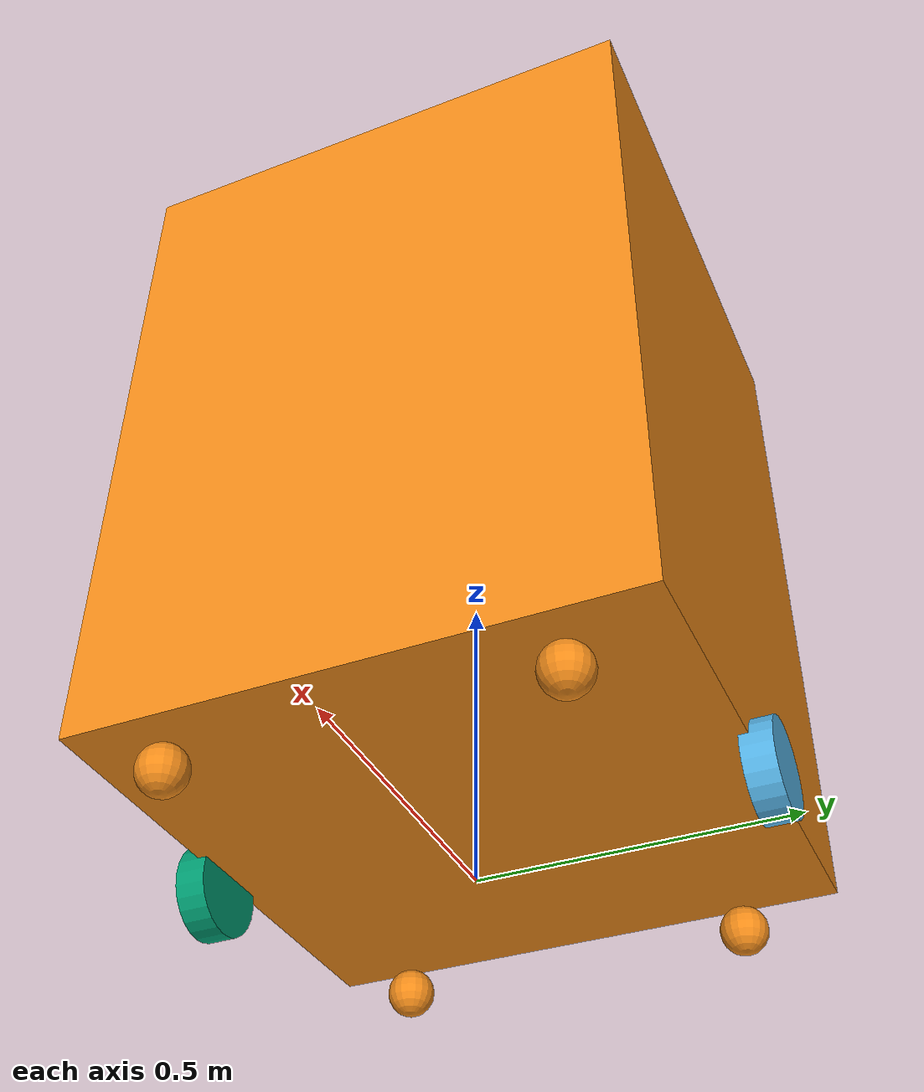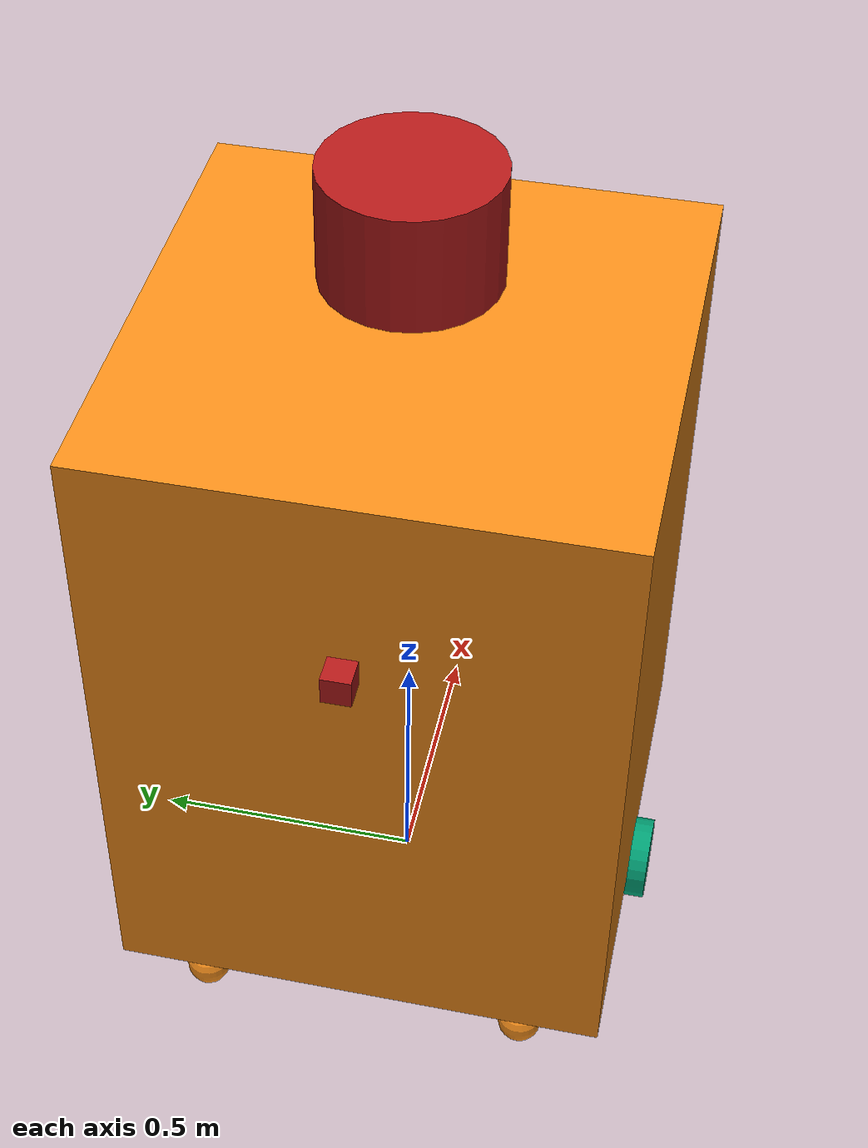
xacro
<?xml version='1.0'?>

<robot name="uvc_robot" xmlns:xacro="http://www.ros.org/wiki/xacro">

  <xacro:include filename="$(find robot_description)/urdf/uvc_robot_m_gazebo.xacro" />
  <xacro:include filename="$(find robot_description)/urdf/materials.xacro" />

  <link name='base_link'>
    <origin xyz="0.0 0.0 0.010" rpy="0 0 0" />
    <inertial>
      <mass value="100.0" />
      <origin xyz="0.0 0 0" rpy=" 0 0 0" />
      <inertia
        ixx="3.5" ixy="0" ixz="0"
        iyy="3.5" iyz="0"
        izz="1.0" />
    </inertial>
    <collision name='collision'>
      <origin xyz="0 0 0.7" rpy=" 0 0 0" />
      <geometry>
        <box size="0.9 0.9 1.2" />
      </geometry>
    </collision>

    <visual name='base_link_visual'>
      <origin xyz="0 0 0.7" rpy=" 0 0 0" />
      <geometry>
        <box size="0.9 0.9 1.2" />
      </geometry>
    </visual>

    <collision name='caster1_collision'>
      <origin xyz="-0.4 0.3 0.04" rpy=" 0 0 0" />
      <geometry>
        <sphere radius="0.04" />
      </geometry>
      <surface>
        <friction>
          <ode>
            <mu>0</mu>
            <mu2>0</mu2>
            <slip1>1.0</slip1>
            <slip2>1.0</slip2>
          </ode>
        </friction>
      </surface>
    </collision>

    <visual name='caster1_visual'>
      <origin xyz="-0.4 0.3 0.04" rpy=" 0 0 0" />
      <geometry>
        <sphere radius="0.04" />
      </geometry>
    </visual>
    <collision name='caster2_collision'>
      <origin xyz="0.4 0.3 0.04" rpy=" 0 0 0" />
      <geometry>
        <sphere radius="0.04" />
      </geometry>
      <surface>
        <friction>
          <ode>
            <mu>0</mu>
            <mu2>0</mu2>
            <slip1>1.0</slip1>
            <slip2>1.0</slip2>
          </ode>
        </friction>
      </surface>
    </collision>

    <visual name='caster2_visual'>
      <origin xyz="0.4 0.3 0.04" rpy=" 0 0 0" />
      <geometry>
        <sphere radius="0.04" />
      </geometry>
    </visual>

    <collision name='caster3_collision'>
      <origin xyz="0.4 -0.3 0.04" rpy=" 0 0 0" />
      <geometry>
        <sphere radius="0.04" />
      </geometry>
      <surface>
        <friction>
          <ode>
            <mu>0</mu>
            <mu2>0</mu2>
            <slip1>1.0</slip1>
            <slip2>1.0</slip2>
          </ode>
        </friction>
      </surface>
    </collision>

    <visual name='caster3_visual'>
      <origin xyz="0.4 -0.3 0.04" rpy=" 0 0 0" />
      <geometry>
        <sphere radius="0.04" />
      </geometry>
    </visual>

    <collision name='caster4_collision'>
      <origin xyz="-0.4 -0.3 0.04" rpy=" 0 0 0" />
      <geometry>
        <sphere radius="0.04" />
      </geometry>
      <surface>
        <friction>
          <ode>
            <mu>0</mu>
            <mu2>0</mu2>
            <slip1>1.0</slip1>
            <slip2>1.0</slip2>
          </ode>
        </friction>
      </surface>
    </collision>

    <visual name='caster4_visual'>
      <origin xyz="-0.4 -0.3 0.04" rpy=" 0 0 0" />
      <geometry>
        <sphere radius="0.04" />
      </geometry>
    </visual>
  </link>

  <!-- wheels =============================================================  -->

  <link name="left_wheel">
    <collision name="collision">
      <origin xyz="0 0 0" rpy="0 1.5707 1.5707" />
      <geometry>
        <cylinder radius="0.0775" length="0.05" />
      </geometry>
    </collision>
    <friction>
      <ode>
        <mu>0.1</mu>
        <mu2>0.1</mu2>
      </ode>
    </friction>
    <visual name="left_wheel_visual">
      <origin xyz="0 0 0" rpy="0 1.5707 1.5707" />
      <geometry>
        <cylinder radius="0.0775" length="0.05" />
      </geometry>
    </visual>
    <inertial>
      <origin xyz="0 0 0" rpy="0 1.5707 1.5707" />
      <mass value="4" />
      <cylinder_inertia m="4" r="0.0775" h="0.05" />
      <inertia
        ixx="1.0" ixy="0.0" ixz="0.0"
        iyy="1.0" iyz="0.0"
        izz="1.0" />
    </inertial>
  </link>

  <link name="right_wheel">
    <collision name="collision">
      <origin xyz="0 0 0" rpy="0 1.5707 1.5707" />
      <geometry>
        <cylinder radius="0.0775" length="0.05" />
      </geometry>
    </collision>
    <friction>
      <ode>
        <mu>0.1</mu>
        <mu2>0.1</mu2>
      </ode>
    </friction>
    <visual name="right_wheel_visual">
      <origin xyz="0 0 0" rpy="0 1.5707 1.5707" />
      <geometry>
        <cylinder radius="0.0775" length="0.05" />
      </geometry>
    </visual>
    <inertial>
      <origin xyz="0 0 0" rpy="0 1.5707 1.5707" />
      <mass value="4" />
      <cylinder_inertia m="4" r="0.0775" h="0.05" />
      <inertia
        ixx="1.0" ixy="0.0" ixz="0.0"
        iyy="1.0" iyz="0.0"
        izz="1.0" />
    </inertial>
  </link>

  <joint type="continuous" name="left_wheel_hinge">
    <origin xyz="0.0 0.46 0.0775" rpy="0 0 0" />
    <child link="left_wheel" />
    <parent link="base_link" />
    <axis xyz="0 1 0" rpy="0 0 0" />
    <limit effort="100" velocity="100" />
    <joint_properties damping="0.0" friction="0.0" />
  </joint>

  <joint type="continuous" name="right_wheel_hinge">
    <origin xyz="0.0 -0.46 0.0775" rpy="0 0 0" />
    <child link="right_wheel" />
    <parent link="base_link" />
    <axis xyz="0 1 0" rpy="0 0 0" />
    <limit effort="100" velocity="100" />
    <joint_properties damping="0.0" friction="0.0" />
  </joint>

  <!-- camera_link ========================================================  -->
  <link name="camera_link">
    <collision>
      <origin xyz="0. 0.0 0.0" rpy="0 0 0" />
      <geometry>
        <box size="0.05 0.05 0.05" />
      </geometry>
    </collision>

    <visual>
      <origin xyz="0. 0.0 0.0" rpy="0 0 0" />
      <geometry>
        <box size="0.05 0.05 0.05" />
      </geometry>
      <material name="green" />
    </visual>
  </link>
  <joint name="camera_joint" type="fixed">
    <axis xyz="0 1 0" />
    <origin xyz="0.25 0 0.40" rpy="0 +0.2617993877991 0" />
    <parent link="base_link" />
    <child link="camera_link" />
  </joint>

  <!-- velodyne_laserscan =================================================  -->
  <link name="velodyne_laserscan">
    <visual>
      <origin xyz="0.0 0 0" rpy="0 0 0" />
      <geometry>
        <cylinder radius="0.15" length="0.20" />
      </geometry>
      <material name="Red">
        <color rgba="0.7 0.1 0.1 1" />
      </material>
    </visual>
    <collision>
      <origin xyz="0 0 0" rpy="0 0 0" />
      <geometry>
        <cylinder radius="0.15" length="0.20" />
      </geometry>
    </collision>
    <inertial>
      <mass value="0.1" />
      <origin xyz="0 0 0" rpy="0 0 0" />
      <inertia
        ixx="0.1" ixy="0" ixz="0"
        iyy="0.1" iyz="0"
        izz="0.1" />
    </inertial>
  </link>

  <joint name="velodyne_laserscan_joint" type="fixed">
    <axis xyz="0 1 0" />
    <origin xyz="0.0 0.0 1.5" rpy="0 0 0" />
    <parent link="base_link" />
    <child link="velodyne_laserscan" />
  </joint>

  <!-- imu ================================================================  -->
  <joint name="imu_link_joint" type="fixed">
    <parent link="base_link" />
    <child link="imu_link" />
    <origin xyz="-0.032 0 0.068" rpy="1.57079633 0 0" />
  </joint>

  <link name="imu_link" />

  <!-- usb_cam ============================================================  -->
  <link name="usb_cam">
    <visual>
      <origin xyz="0.0 0 0" rpy="0 0 0" />
      <geometry>
        <box size="0.05 0.05 0.05" />
      </geometry>
      <material name="Red">
        <color rgba="0.7 0.1 0.1 1" />
      </material>
    </visual>
    <collision>
      <origin xyz="0 0 0" rpy="0 0 0" />
      <geometry>
        <box size="0.05 0.05 0.05" />
      </geometry>
    </collision>
    <inertial>
      <mass value="0.1" />
      <origin xyz="0 0 0" rpy="0 0 0" />
      <inertia
        ixx="0.1" ixy="0" ixz="0"
        iyy="0.1" iyz="0"
        izz="0.1" />
    </inertial>
  </link>

  <joint name="usb_cam_joint" type="fixed">
    <parent link="base_link" />
    <child link="usb_cam" />
    <origin xyz="-0.51 0.0 1.0" rpy="0 0 ${pi}" />
  </joint>

</robot>

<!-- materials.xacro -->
<robot>

  <material name="black">
    <color rgba="0.0 0.0 0.0 1.0" />
  </material>

  <material name="blue">
    <color rgba="0.0 0.0 0.8 1.0" />
  </material>

  <material name="green">
    <color rgba="0.0 0.8 0.0 1.0" />
  </material>

  <material name="grey">
    <color rgba="0.2 0.2 0.2 1.0" />
  </material>

  <material name="orange">
    <color rgba="${255/255} ${108/255} ${10/255} 1.0" />
  </material>

  <material name="brown">
    <color rgba="${222/255} ${207/255} ${195/255} 1.0" />
  </material>

  <material name="red">
    <color rgba="0.8 0.0 0.0 1.0" />
  </material>

  <material name="white">
    <color rgba="1.0 1.0 1.0 1.0" />
  </material>

</robot>
